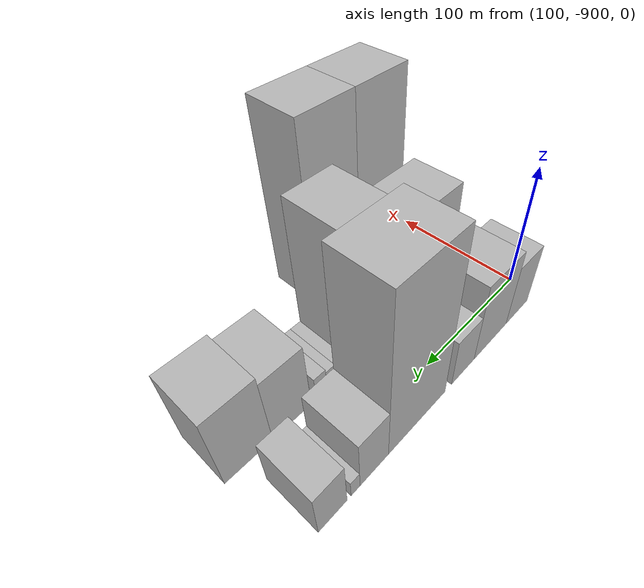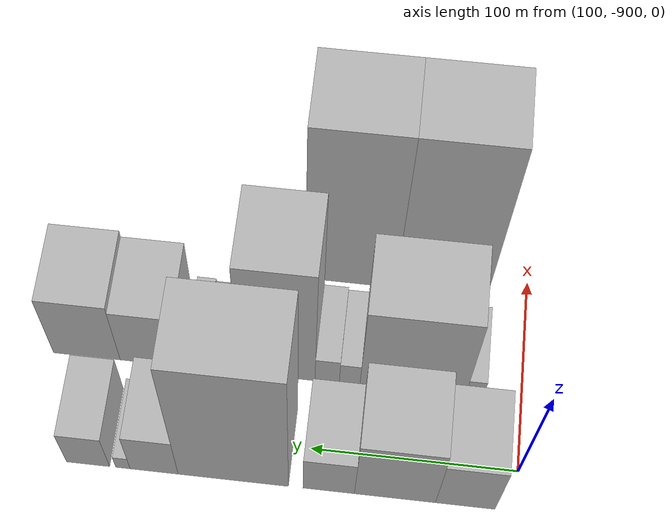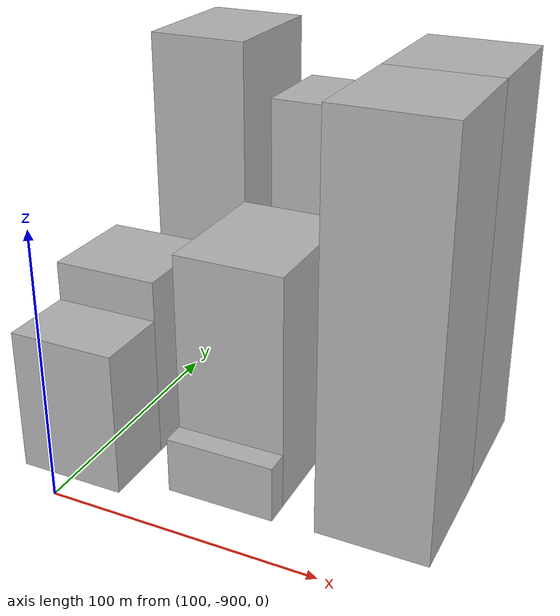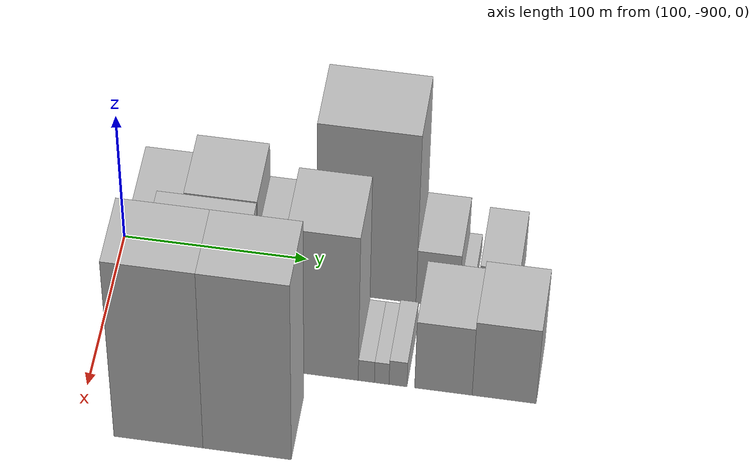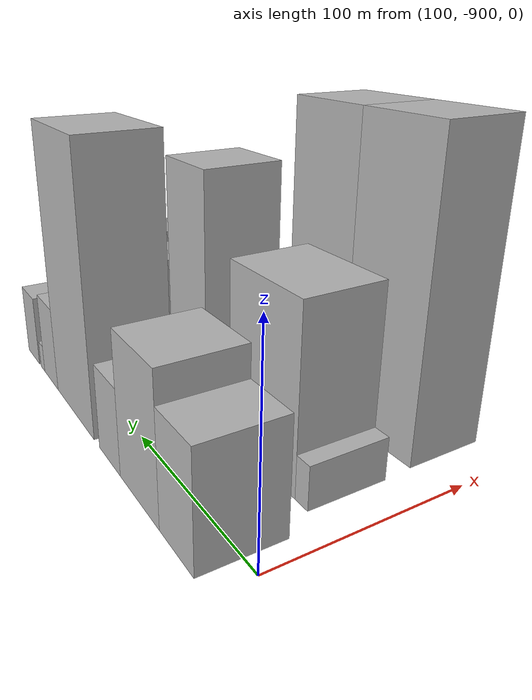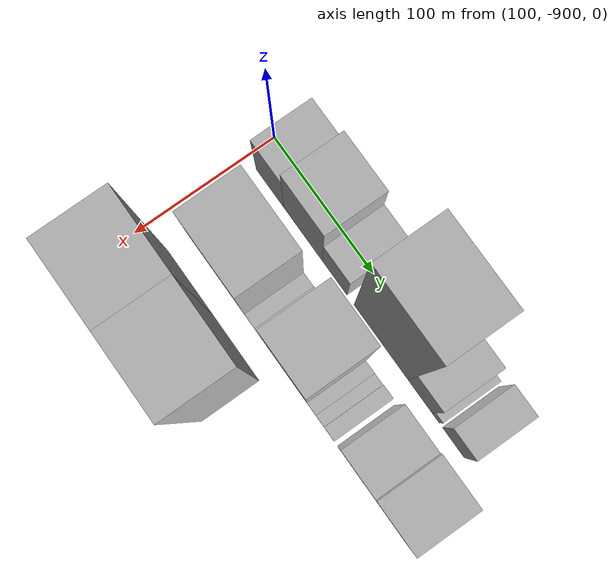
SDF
<sdf version="1.6">
 <world name="default">
  <model name="building_1">
   <static>1</static>
   <pose>100.0000 -875.8655 0 0.000000 0.000000 0.000000</pose>
   <link name="link">
    <pose>0 0 27.00 0 0 0</pose>
    <collision name="collision"><geometry><box><size>40.0000 28.2690 54.0000</size></box></geometry></collision>
    <visual name="visual">
     <cast_shadows>0</cast_shadows>
     <geometry><box><size>40.0000 28.2690 54.0000</size></box></geometry>
     <material>
      <script>
       <uri>model://HANNAS_wall/materials/scripts</uri>
       <uri>model://HANNAS_wall/materials/textures</uri>
       <name>vrc/HANNAS_wall</name>
      </script>
     </material>
    </visual>
   </link>
  </model>
  <model name="building_2">
   <static>1</static>
   <pose>100.0000 -842.3592 0 0.000000 0.000000 0.000000</pose>
   <link name="link">
    <pose>0 0 34.50 0 0 0</pose>
    <collision name="collision"><geometry><box><size>40.0000 38.7436 69.0000</size></box></geometry></collision>
    <visual name="visual">
     <cast_shadows>0</cast_shadows>
     <geometry><box><size>40.0000 38.7436 69.0000</size></box></geometry>
     <material>
      <script>
       <uri>model://HANNAS_wall/materials/scripts</uri>
       <uri>model://HANNAS_wall/materials/textures</uri>
       <name>vrc/HANNAS_wall</name>
      </script>
     </material>
    </visual>
   </link>
  </model>
  <model name="building_3">
   <static>1</static>
   <pose>100.0000 -810.6774 0 0.000000 0.000000 0.000000</pose>
   <link name="link">
    <pose>0 0 21.00 0 0 0</pose>
    <collision name="collision"><geometry><box><size>40.0000 24.6200 42.0000</size></box></geometry></collision>
    <visual name="visual">
     <cast_shadows>0</cast_shadows>
     <geometry><box><size>40.0000 24.6200 42.0000</size></box></geometry>
     <material>
      <script>
       <uri>model://HANNAS_wall/materials/scripts</uri>
       <uri>model://HANNAS_wall/materials/textures</uri>
       <name>vrc/HANNAS_wall</name>
      </script>
     </material>
    </visual>
   </link>
  </model>
  <model name="building_4">
   <static>1</static>
   <pose>100.0000 -764.7874 0 0.000000 0.000000 0.000000</pose>
   <link name="link">
    <pose>0 0 69.00 0 0 0</pose>
    <collision name="collision"><geometry><box><size>40.0000 53.1601 138.0000</size></box></geometry></collision>
    <visual name="visual">
     <cast_shadows>0</cast_shadows>
     <geometry><box><size>40.0000 53.1601 138.0000</size></box></geometry>
     <material>
      <script>
       <uri>model://HANNAS_wall/materials/scripts</uri>
       <uri>model://HANNAS_wall/materials/textures</uri>
       <name>vrc/HANNAS_wall</name>
      </script>
     </material>
    </visual>
   </link>
  </model>
  <model name="building_5">
   <static>1</static>
   <pose>100.0000 -726.5700 0 0.000000 0.000000 0.000000</pose>
   <link name="link">
    <pose>0 0 22.50 0 0 0</pose>
    <collision name="collision"><geometry><box><size>40.0000 23.2748 45.0000</size></box></geometry></collision>
    <visual name="visual">
     <cast_shadows>0</cast_shadows>
     <geometry><box><size>40.0000 23.2748 45.0000</size></box></geometry>
     <material>
      <script>
       <uri>model://HANNAS_wall/materials/scripts</uri>
       <uri>model://HANNAS_wall/materials/textures</uri>
       <name>vrc/HANNAS_wall</name>
      </script>
     </material>
    </visual>
   </link>
  </model>
  <model name="building_6">
   <static>1</static>
   <pose>100.0000 -711.4484 0 0.000000 0.000000 0.000000</pose>
   <link name="link">
    <pose>0 0 7.50 0 0 0</pose>
    <collision name="collision"><geometry><box><size>40.0000 6.9683 15.0000</size></box></geometry></collision>
    <visual name="visual">
     <cast_shadows>0</cast_shadows>
     <geometry><box><size>40.0000 6.9683 15.0000</size></box></geometry>
     <material>
      <script>
       <uri>model://HANNAS_wall/materials/scripts</uri>
       <uri>model://HANNAS_wall/materials/textures</uri>
       <name>vrc/HANNAS_wall</name>
      </script>
     </material>
    </visual>
   </link>
  </model>
  <model name="building_7">
   <static>1</static>
   <pose>100.0000 -694.4781 0 0.000000 0.000000 0.000000</pose>
   <link name="link">
    <pose>0 0 19.50 0 0 0</pose>
    <collision name="collision"><geometry><box><size>40.0000 20.9722 39.0000</size></box></geometry></collision>
    <visual name="visual">
     <cast_shadows>0</cast_shadows>
     <geometry><box><size>40.0000 20.9722 39.0000</size></box></geometry>
     <material>
      <script>
       <uri>model://HANNAS_wall/materials/scripts</uri>
       <uri>model://HANNAS_wall/materials/textures</uri>
       <name>vrc/HANNAS_wall</name>
      </script>
     </material>
    </visual>
   </link>
  </model>
  <model name="building_53">
   <static>1</static>
   <pose>155.0000 -876.6834 0 0.000000 0.000000 0.000000</pose>
   <link name="link">
    <pose>0 0 10.50 0 0 0</pose>
    <collision name="collision"><geometry><box><size>40.0000 8.6332 21.0000</size></box></geometry></collision>
    <visual name="visual">
     <cast_shadows>0</cast_shadows>
     <geometry><box><size>40.0000 8.6332 21.0000</size></box></geometry>
     <material>
      <script>
       <uri>model://HANNAS_wall/materials/scripts</uri>
       <uri>model://HANNAS_wall/materials/textures</uri>
       <name>vrc/HANNAS_wall</name>
      </script>
     </material>
    </visual>
   </link>
  </model>
  <model name="building_54">
   <static>1</static>
   <pose>155.0000 -846.3705 0 0.000000 0.000000 0.000000</pose>
   <link name="link">
    <pose>0 0 43.50 0 0 0</pose>
    <collision name="collision"><geometry><box><size>40.0000 51.9926 87.0000</size></box></geometry></collision>
    <visual name="visual">
     <cast_shadows>0</cast_shadows>
     <geometry><box><size>40.0000 51.9926 87.0000</size></box></geometry>
     <material>
      <script>
       <uri>model://HANNAS_wall/materials/scripts</uri>
       <uri>model://HANNAS_wall/materials/textures</uri>
       <name>vrc/HANNAS_wall</name>
      </script>
     </material>
    </visual>
   </link>
  </model>
  <model name="building_55">
   <static>1</static>
   <pose>155.0000 -815.2840 0 0.000000 0.000000 0.000000</pose>
   <link name="link">
    <pose>0 0 12.00 0 0 0</pose>
    <collision name="collision"><geometry><box><size>40.0000 10.1804 24.0000</size></box></geometry></collision>
    <visual name="visual">
     <cast_shadows>0</cast_shadows>
     <geometry><box><size>40.0000 10.1804 24.0000</size></box></geometry>
     <material>
      <script>
       <uri>model://HANNAS_wall/materials/scripts</uri>
       <uri>model://HANNAS_wall/materials/textures</uri>
       <name>vrc/HANNAS_wall</name>
      </script>
     </material>
    </visual>
   </link>
  </model>
  <model name="building_56">
   <static>1</static>
   <pose>155.0000 -804.1719 0 0.000000 0.000000 0.000000</pose>
   <link name="link">
    <pose>0 0 13.50 0 0 0</pose>
    <collision name="collision"><geometry><box><size>40.0000 12.0438 27.0000</size></box></geometry></collision>
    <visual name="visual">
     <cast_shadows>0</cast_shadows>
     <geometry><box><size>40.0000 12.0438 27.0000</size></box></geometry>
     <material>
      <script>
       <uri>model://HANNAS_wall/materials/scripts</uri>
       <uri>model://HANNAS_wall/materials/textures</uri>
       <name>vrc/HANNAS_wall</name>
      </script>
     </material>
    </visual>
   </link>
  </model>
  <model name="building_57">
   <static>1</static>
   <pose>155.0000 -779.5093 0 0.000000 0.000000 0.000000</pose>
   <link name="link">
    <pose>0 0 60.00 0 0 0</pose>
    <collision name="collision"><geometry><box><size>40.0000 37.2814 120.0000</size></box></geometry></collision>
    <visual name="visual">
     <cast_shadows>0</cast_shadows>
     <geometry><box><size>40.0000 37.2814 120.0000</size></box></geometry>
     <material>
      <script>
       <uri>model://HANNAS_wall/materials/scripts</uri>
       <uri>model://HANNAS_wall/materials/textures</uri>
       <name>vrc/HANNAS_wall</name>
      </script>
     </material>
    </visual>
   </link>
  </model>
  <model name="building_58">
   <static>1</static>
   <pose>155.0000 -756.5754 0 0.000000 0.000000 0.000000</pose>
   <link name="link">
    <pose>0 0 9.00 0 0 0</pose>
    <collision name="collision"><geometry><box><size>40.0000 8.5863 18.0000</size></box></geometry></collision>
    <visual name="visual">
     <cast_shadows>0</cast_shadows>
     <geometry><box><size>40.0000 8.5863 18.0000</size></box></geometry>
     <material>
      <script>
       <uri>model://HANNAS_wall/materials/scripts</uri>
       <uri>model://HANNAS_wall/materials/textures</uri>
       <name>vrc/HANNAS_wall</name>
      </script>
     </material>
    </visual>
   </link>
  </model>
  <model name="building_59">
   <static>1</static>
   <pose>155.0000 -748.4291 0 0.000000 0.000000 0.000000</pose>
   <link name="link">
    <pose>0 0 9.00 0 0 0</pose>
    <collision name="collision"><geometry><box><size>40.0000 7.7064 18.0000</size></box></geometry></collision>
    <visual name="visual">
     <cast_shadows>0</cast_shadows>
     <geometry><box><size>40.0000 7.7064 18.0000</size></box></geometry>
     <material>
      <script>
       <uri>model://HANNAS_wall/materials/scripts</uri>
       <uri>model://HANNAS_wall/materials/textures</uri>
       <name>vrc/HANNAS_wall</name>
      </script>
     </material>
    </visual>
   </link>
  </model>
  <model name="building_60">
   <static>1</static>
   <pose>155.0000 -739.8344 0 0.000000 0.000000 0.000000</pose>
   <link name="link">
    <pose>0 0 10.50 0 0 0</pose>
    <collision name="collision"><geometry><box><size>40.0000 9.4830 21.0000</size></box></geometry></collision>
    <visual name="visual">
     <cast_shadows>0</cast_shadows>
     <geometry><box><size>40.0000 9.4830 21.0000</size></box></geometry>
     <material>
      <script>
       <uri>model://HANNAS_wall/materials/scripts</uri>
       <uri>model://HANNAS_wall/materials/textures</uri>
       <name>vrc/HANNAS_wall</name>
      </script>
     </material>
    </visual>
   </link>
  </model>
  <model name="building_61">
   <static>1</static>
   <pose>155.0000 -715.9722 0 0.000000 0.000000 0.000000</pose>
   <link name="link">
    <pose>0 0 28.50 0 0 0</pose>
    <collision name="collision"><geometry><box><size>40.0000 30.2414 57.0000</size></box></geometry></collision>
    <visual name="visual">
     <cast_shadows>0</cast_shadows>
     <geometry><box><size>40.0000 30.2414 57.0000</size></box></geometry>
     <material>
      <script>
       <uri>model://HANNAS_wall/materials/scripts</uri>
       <uri>model://HANNAS_wall/materials/textures</uri>
       <name>vrc/HANNAS_wall</name>
      </script>
     </material>
    </visual>
   </link>
  </model>
  <model name="building_62">
   <static>1</static>
   <pose>155.0000 -684.0424 0 0.000000 0.000000 0.000000</pose>
   <link name="link">
    <pose>0 0 31.50 0 0 0</pose>
    <collision name="collision"><geometry><box><size>40.0000 33.6181 63.0000</size></box></geometry></collision>
    <visual name="visual">
     <cast_shadows>0</cast_shadows>
     <geometry><box><size>40.0000 33.6181 63.0000</size></box></geometry>
     <material>
      <script>
       <uri>model://HANNAS_wall/materials/scripts</uri>
       <uri>model://HANNAS_wall/materials/textures</uri>
       <name>vrc/HANNAS_wall</name>
      </script>
     </material>
    </visual>
   </link>
  </model>
  <model name="building_112">
   <static>1</static>
   <pose>210.0000 -856.6553 0 0.000000 0.000000 0.000000</pose>
   <link name="link">
    <pose>0 0 73.50 0 0 0</pose>
    <collision name="collision"><geometry><box><size>40.0000 46.6894 147.0000</size></box></geometry></collision>
    <visual name="visual">
     <cast_shadows>0</cast_shadows>
     <geometry><box><size>40.0000 46.6894 147.0000</size></box></geometry>
     <material>
      <script>
       <uri>model://HANNAS_wall/materials/scripts</uri>
       <uri>model://HANNAS_wall/materials/textures</uri>
       <name>vrc/HANNAS_wall</name>
      </script>
     </material>
    </visual>
   </link>
  </model>
  <model name="building_113">
   <static>1</static>
   <pose>210.0000 -810.2821 0 0.000000 0.000000 0.000000</pose>
   <link name="link">
    <pose>0 0 73.50 0 0 0</pose>
    <collision name="collision"><geometry><box><size>40.0000 46.0571 147.0000</size></box></geometry></collision>
    <visual name="visual">
     <cast_shadows>0</cast_shadows>
     <geometry><box><size>40.0000 46.0571 147.0000</size></box></geometry>
     <material>
      <script>
       <uri>model://HANNAS_wall/materials/scripts</uri>
       <uri>model://HANNAS_wall/materials/textures</uri>
       <name>vrc/HANNAS_wall</name>
      </script>
     </material>
    </visual>
   </link>
  </model>
 </world>
</sdf>
